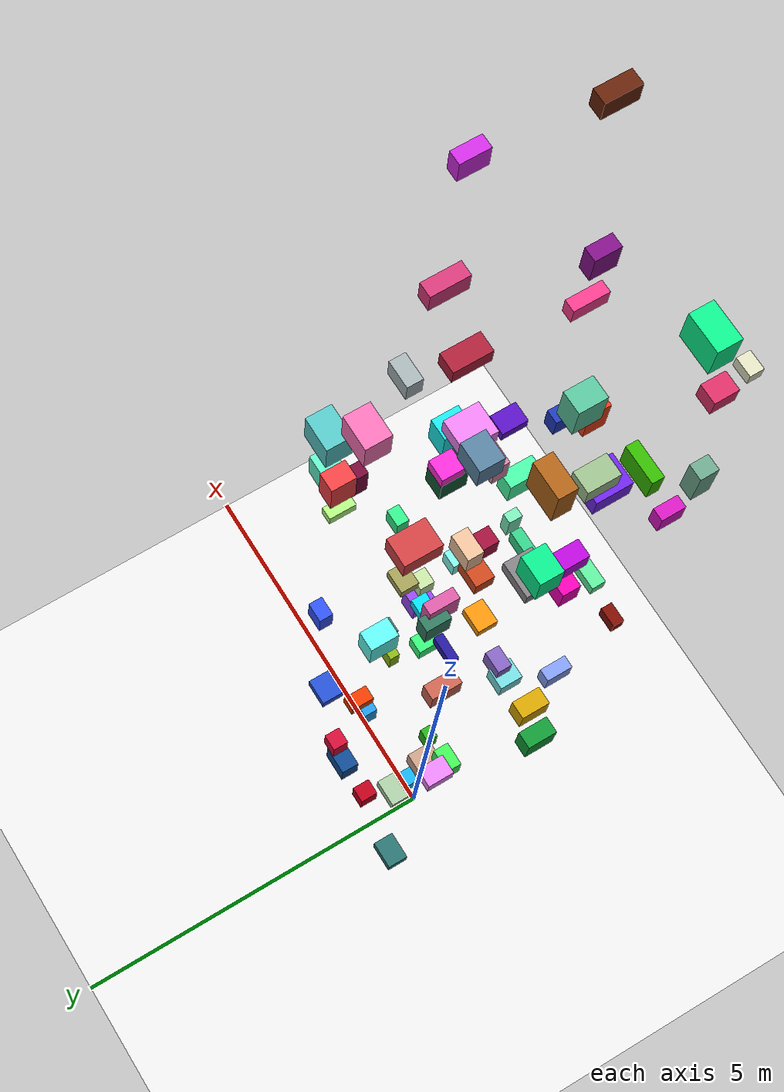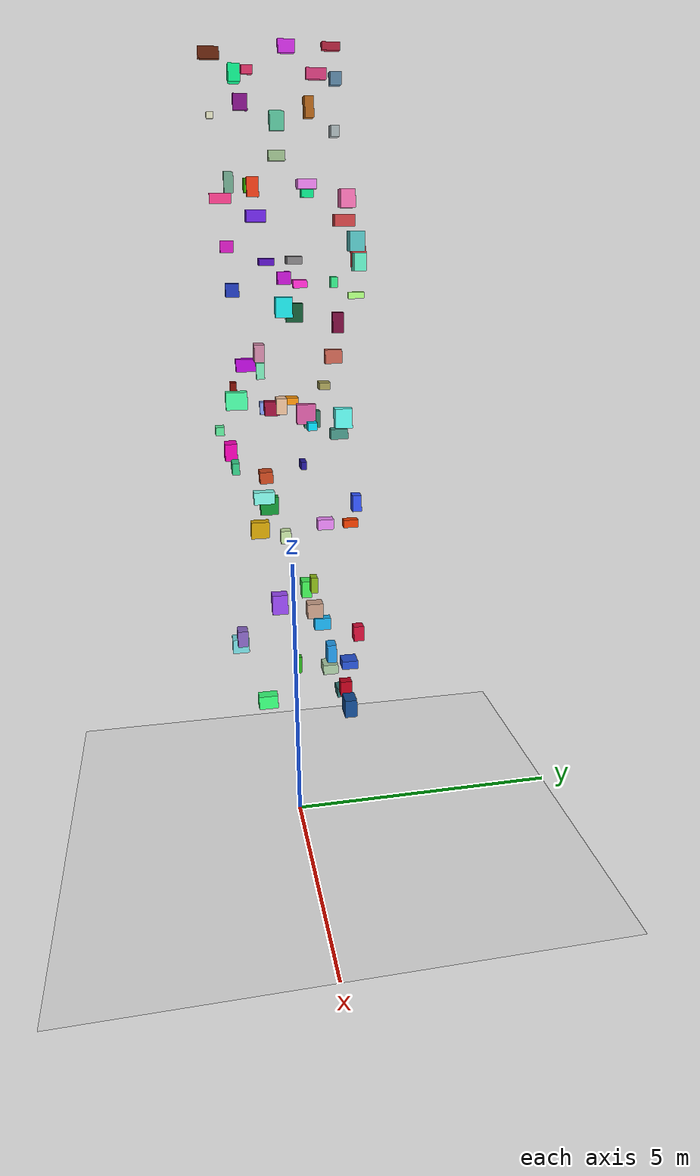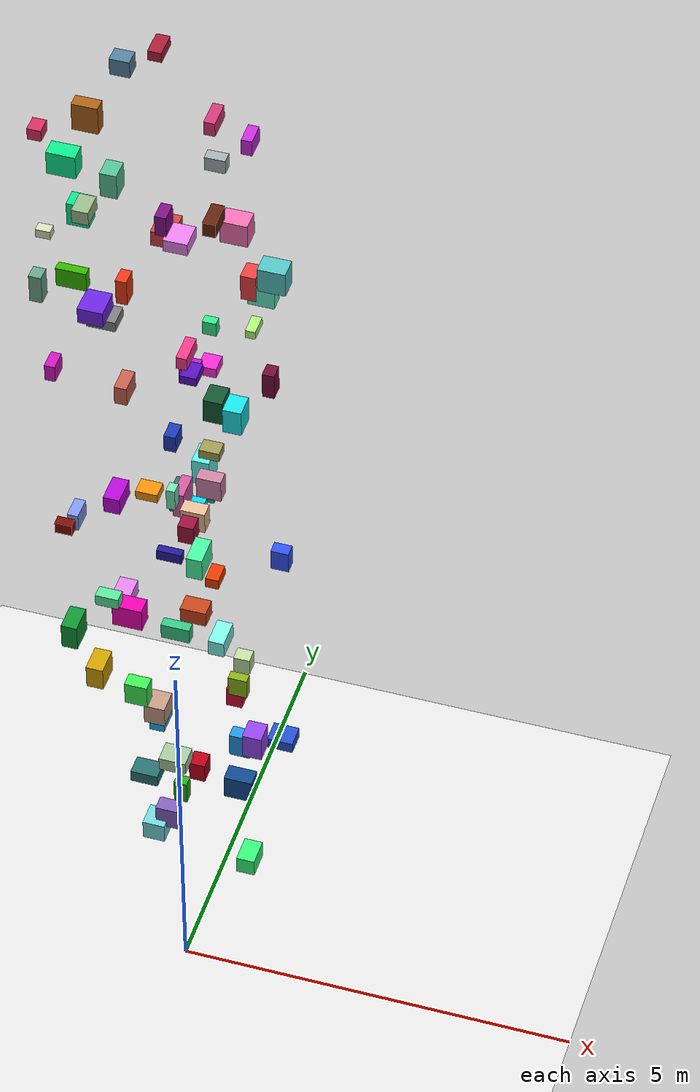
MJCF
<mujoco>
  <option timestep="0.002" gravity="0 0 -9.81" iterations="50"/>
  <compiler angle="degree"/>

  <worldbody>

    <light diffuse="0.6 0.6 0.6" pos="0 0 6" dir="0 0 -1"/>
    <light diffuse="0.4 0.4 0.4" pos="3 3 6" dir="-1 -1 -1"/>

    <geom type="plane" size="5 5 0.1" rgba="0.9 0.9 0.9 1"
          friction="1.0 0.5 0.5"/>

    <body pos="1.063 0.027 13.715">
      <joint type="free"/>
      <geom type="box"
            size="0.061 0.129 0.099"
            rgba="0.80 0.17 0.87 1"
            friction="0.8 0.1 0.1"/>
    </body>

    <body pos="0.105 0.965 7.726">
      <joint type="free"/>
      <geom type="box"
            size="0.106 0.153 0.178"
            rgba="0.37 0.97 0.93 1"
            friction="0.8 0.1 0.1"/>
    </body>

    <body pos="-0.774 0.261 10.458">
      <joint type="free"/>
      <geom type="box"
            size="0.173 0.137 0.067"
            rgba="0.50 0.49 0.50 1"
            friction="0.8 0.1 0.1"/>
    </body>

    <body pos="1.101 -0.360 4.685">
      <joint type="free"/>
      <geom type="box"
            size="0.118 0.133 0.172"
            rgba="0.58 0.27 0.93 1"
            friction="0.8 0.1 0.1"/>
    </body>

    <body pos="-0.020 0.422 7.712">
      <joint type="free"/>
      <geom type="box"
            size="0.078 0.140 0.150"
            rgba="0.19 0.46 0.36 1"
            friction="0.8 0.1 0.1"/>
    </body>

    <body pos="-0.790 -0.669 13.550">
      <joint type="free"/>
      <geom type="box"
            size="0.165 0.100 0.146"
            rgba="0.04 0.92 0.54 1"
            friction="0.8 0.1 0.1"/>
    </body>

    <body pos="0.769 -0.538 6.513">
      <joint type="free"/>
      <geom type="box"
            size="0.095 0.176 0.106"
            rgba="0.50 0.96 0.90 1"
            friction="0.8 0.1 0.1"/>
    </body>

    <body pos="-0.252 -0.462 11.685">
      <joint type="free"/>
      <geom type="box"
            size="0.064 0.101 0.164"
            rgba="0.92 0.23 0.08 1"
            friction="0.8 0.1 0.1"/>
    </body>

    <body pos="0.691 0.292 4.850">
      <joint type="free"/>
      <geom type="box"
            size="0.116 0.059 0.141"
            rgba="0.53 0.70 0.09 1"
            friction="0.8 0.1 0.1"/>
    </body>

    <body pos="0.348 -0.311 7.992">
      <joint type="free"/>
      <geom type="box"
            size="0.094 0.132 0.124"
            rgba="0.62 0.06 0.23 1"
            friction="0.8 0.1 0.1"/>
    </body>

    <body pos="-1.027 -0.280 7.772">
      <joint type="free"/>
      <geom type="box"
            size="0.065 0.137 0.113"
            rgba="0.50 0.60 0.93 1"
            friction="0.8 0.1 0.1"/>
    </body>

    <body pos="0.213 -0.976 3.758">
      <joint type="free"/>
      <geom type="box"
            size="0.140 0.092 0.148"
            rgba="0.51 0.38 0.74 1"
            friction="0.8 0.1 0.1"/>
    </body>

    <body pos="-0.761 -0.516 5.503">
      <joint type="free"/>
      <geom type="box"
            size="0.104 0.168 0.156"
            rgba="0.82 0.63 0.01 1"
            friction="0.8 0.1 0.1"/>
    </body>

    <body pos="-0.513 0.004 12.781">
      <joint type="free"/>
      <geom type="box"
            size="0.097 0.122 0.160"
            rgba="0.34 0.75 0.60 1"
            friction="0.8 0.1 0.1"/>
    </body>

    <body pos="0.061 0.311 7.818">
      <joint type="free"/>
      <geom type="box"
            size="0.065 0.167 0.176"
            rgba="0.83 0.35 0.63 1"
            friction="0.8 0.1 0.1"/>
    </body>

    <body pos="0.650 -1.051 11.473">
      <joint type="free"/>
      <geom type="box"
            size="0.061 0.172 0.081"
            rgba="0.96 0.23 0.54 1"
            friction="0.8 0.1 0.1"/>
    </body>

    <body pos="0.796 1.170 10.468">
      <joint type="free"/>
      <geom type="box"
            size="0.159 0.101 0.148"
            rgba="0.38 0.93 0.77 1"
            friction="0.8 0.1 0.1"/>
    </body>

    <body pos="-0.289 0.682 2.798">
      <joint type="free"/>
      <geom type="box"
            size="0.170 0.140 0.093"
            rgba="0.65 0.78 0.63 1"
            friction="0.8 0.1 0.1"/>
    </body>

    <body pos="0.928 -0.203 5.840">
      <joint type="free"/>
      <geom type="box"
            size="0.098 0.087 0.112"
            rgba="0.76 0.87 0.63 1"
            friction="0.8 0.1 0.1"/>
    </body>

    <body pos="0.686 1.128 9.916">
      <joint type="free"/>
      <geom type="box"
            size="0.061 0.131 0.053"
            rgba="0.68 1.00 0.49 1"
            friction="0.8 0.1 0.1"/>
    </body>

    <body pos="1.039 -1.153 13.582">
      <joint type="free"/>
      <geom type="box"
            size="0.072 0.159 0.089"
            rgba="0.39 0.13 0.04 1"
            friction="0.8 0.1 0.1"/>
    </body>

    <body pos="0.605 0.591 3.482">
      <joint type="free"/>
      <geom type="box"
            size="0.131 0.083 0.167"
            rgba="0.13 0.59 0.89 1"
            friction="0.8 0.1 0.1"/>
    </body>

    <body pos="0.092 0.410 11.725">
      <joint type="free"/>
      <geom type="box"
            size="0.142 0.157 0.079"
            rgba="0.91 0.50 0.92 1"
            friction="0.8 0.1 0.1"/>
    </body>

    <body pos="0.477 0.562 13.412">
      <joint type="free"/>
      <geom type="box"
            size="0.064 0.163 0.088"
            rgba="0.82 0.22 0.47 1"
            friction="0.8 0.1 0.1"/>
    </body>

    <body pos="-0.866 0.733 5.511">
      <joint type="free"/>
      <geom type="box"
            size="0.112 0.153 0.098"
            rgba="0.89 0.51 0.94 1"
            friction="0.8 0.1 0.1"/>
    </body>

    <body pos="0.651 1.185 10.551">
      <joint type="free"/>
      <geom type="box"
            size="0.091 0.119 0.172"
            rgba="0.92 0.25 0.26 1"
            friction="0.8 0.1 0.1"/>
    </body>

    <body pos="-0.594 0.301 4.333">
      <joint type="free"/>
      <geom type="box"
            size="0.142 0.092 0.159"
            rgba="0.25 0.93 0.33 1"
            friction="0.8 0.1 0.1"/>
    </body>

    <body pos="-1.116 -0.812 11.794">
      <joint type="free"/>
      <geom type="box"
            size="0.072 0.083 0.179"
            rgba="0.42 0.64 0.54 1"
            friction="0.8 0.1 0.1"/>
    </body>

    <body pos="-0.075 0.954 2.438">
      <joint type="free"/>
      <geom type="box"
            size="0.100 0.109 0.139"
            rgba="0.73 0.00 0.10 1"
            friction="0.8 0.1 0.1"/>
    </body>

    <body pos="-0.627 -0.398 11.213">
      <joint type="free"/>
      <geom type="box"
            size="0.147 0.171 0.102"
            rgba="0.42 0.14 0.89 1"
            friction="0.8 0.1 0.1"/>
    </body>

    <body pos="0.956 1.094 10.805">
      <joint type="free"/>
      <geom type="box"
            size="0.165 0.124 0.159"
            rgba="0.33 0.76 0.76 1"
            friction="0.8 0.1 0.1"/>
    </body>

    <body pos="0.284 0.814 10.114">
      <joint type="free"/>
      <geom type="box"
            size="0.082 0.057 0.092"
            rgba="0.20 0.91 0.53 1"
            friction="0.8 0.1 0.1"/>
    </body>

    <body pos="0.551 1.020 11.488">
      <joint type="free"/>
      <geom type="box"
            size="0.163 0.123 0.149"
            rgba="0.96 0.44 0.70 1"
            friction="0.8 0.1 0.1"/>
    </body>

    <body pos="1.087 -0.621 2.865">
      <joint type="free"/>
      <geom type="box"
            size="0.112 0.166 0.118"
            rgba="0.21 0.99 0.47 1"
            friction="0.8 0.1 0.1"/>
    </body>

    <body pos="-0.150 -1.024 7.164">
      <joint type="free"/>
      <geom type="box"
            size="0.177 0.106 0.151"
            rgba="0.93 0.00 0.69 1"
            friction="0.8 0.1 0.1"/>
    </body>

    <body pos="-0.858 0.021 12.240">
      <joint type="free"/>
      <geom type="box"
            size="0.097 0.144 0.087"
            rgba="0.60 0.73 0.54 1"
            friction="0.8 0.1 0.1"/>
    </body>

    <body pos="-0.421 0.575 3.656">
      <joint type="free"/>
      <geom type="box"
            size="0.093 0.152 0.115"
            rgba="0.09 0.68 0.92 1"
            friction="0.8 0.1 0.1"/>
    </body>

    <body pos="-0.788 1.005 2.053">
      <joint type="free"/>
      <geom type="box"
            size="0.174 0.129 0.084"
            rgba="0.16 0.44 0.43 1"
            friction="0.8 0.1 0.1"/>
    </body>

    <body pos="0.015 0.041 3.041">
      <joint type="free"/>
      <geom type="box"
            size="0.082 0.069 0.157"
            rgba="0.15 0.67 0.09 1"
            friction="0.8 0.1 0.1"/>
    </body>

    <body pos="0.367 -0.157 8.035">
      <joint type="free"/>
      <geom type="box"
            size="0.147 0.090 0.140"
            rgba="0.91 0.74 0.60 1"
            friction="0.8 0.1 0.1"/>
    </body>

    <body pos="0.457 0.942 2.302">
      <joint type="free"/>
      <geom type="box"
            size="0.179 0.111 0.166"
            rgba="0.06 0.28 0.56 1"
            friction="0.8 0.1 0.1"/>
    </body>

    <body pos="0.165 1.055 5.789">
      <joint type="free"/>
      <geom type="box"
            size="0.081 0.132 0.071"
            rgba="0.91 0.23 0.00 1"
            friction="0.8 0.1 0.1"/>
    </body>

    <body pos="0.304 -0.655 12.974">
      <joint type="free"/>
      <geom type="box"
            size="0.064 0.115 0.128"
            rgba="0.50 0.06 0.52 1"
            friction="0.8 0.1 0.1"/>
    </body>

    <body pos="-0.888 -1.095 12.879">
      <joint type="free"/>
      <geom type="box"
            size="0.084 0.059 0.052"
            rgba="0.86 0.86 0.74 1"
            friction="0.8 0.1 0.1"/>
    </body>

    <body pos="0.701 -0.532 8.994">
      <joint type="free"/>
      <geom type="box"
            size="0.146 0.082 0.145"
            rgba="0.80 0.52 0.64 1"
            friction="0.8 0.1 0.1"/>
    </body>

    <body pos="-1.138 -0.296 5.864">
      <joint type="free"/>
      <geom type="box"
            size="0.097 0.170 0.172"
            rgba="0.06 0.58 0.20 1"
            friction="0.8 0.1 0.1"/>
    </body>

    <body pos="0.365 1.138 3.720">
      <joint type="free"/>
      <geom type="box"
            size="0.100 0.094 0.142"
            rgba="0.81 0.05 0.21 1"
            friction="0.8 0.1 0.1"/>
    </body>

    <body pos="-0.307 1.106 11.144">
      <joint type="free"/>
      <geom type="box"
            size="0.132 0.176 0.101"
            rgba="0.80 0.25 0.26 1"
            friction="0.8 0.1 0.1"/>
    </body>

    <body pos="0.998 0.764 9.493">
      <joint type="free"/>
      <geom type="box"
            size="0.071 0.091 0.170"
            rgba="0.46 0.04 0.23 1"
            friction="0.8 0.1 0.1"/>
    </body>

    <body pos="0.215 0.867 7.469">
      <joint type="free"/>
      <geom type="box"
            size="0.082 0.153 0.090"
            rgba="0.27 0.58 0.52 1"
            friction="0.8 0.1 0.1"/>
    </body>

    <body pos="0.872 -0.113 9.749">
      <joint type="free"/>
      <geom type="box"
            size="0.110 0.138 0.167"
            rgba="0.10 0.89 0.90 1"
            friction="0.8 0.1 0.1"/>
    </body>

    <body pos="-0.333 -1.192 7.508">
      <joint type="free"/>
      <geom type="box"
            size="0.138 0.076 0.074"
            rgba="0.36 0.90 0.60 1"
            friction="0.8 0.1 0.1"/>
    </body>

    <body pos="0.476 0.210 10.104">
      <joint type="free"/>
      <geom type="box"
            size="0.107 0.115 0.064"
            rgba="1.00 0.17 0.82 1"
            friction="0.8 0.1 0.1"/>
    </body>

    <body pos="0.323 0.604 8.357">
      <joint type="free"/>
      <geom type="box"
            size="0.122 0.095 0.060"
            rgba="0.63 0.61 0.33 1"
            friction="0.8 0.1 0.1"/>
    </body>

    <body pos="1.008 1.026 6.398">
      <joint type="free"/>
      <geom type="box"
            size="0.110 0.078 0.144"
            rgba="0.19 0.32 0.96 1"
            friction="0.8 0.1 0.1"/>
    </body>

    <body pos="-0.832 0.948 8.718">
      <joint type="free"/>
      <geom type="box"
            size="0.076 0.155 0.126"
            rgba="0.78 0.38 0.31 1"
            friction="0.8 0.1 0.1"/>
    </body>

    <body pos="-0.936 -0.893 8.204">
      <joint type="free"/>
      <geom type="box"
            size="0.102 0.058 0.075"
            rgba="0.49 0.05 0.01 1"
            friction="0.8 0.1 0.1"/>
    </body>

    <body pos="0.396 -0.982 6.984">
      <joint type="free"/>
      <geom type="box"
            size="0.171 0.062 0.101"
            rgba="0.20 0.79 0.52 1"
            friction="0.8 0.1 0.1"/>
    </body>

    <body pos="-0.998 0.621 13.063">
      <joint type="free"/>
      <geom type="box"
            size="0.153 0.079 0.179"
            rgba="0.68 0.38 0.09 1"
            friction="0.8 0.1 0.1"/>
    </body>

    <body pos="0.070 -1.010 3.566">
      <joint type="free"/>
      <geom type="box"
            size="0.135 0.147 0.130"
            rgba="0.45 0.84 0.86 1"
            friction="0.8 0.1 0.1"/>
    </body>

    <body pos="-1.112 0.570 11.697">
      <joint type="free"/>
      <geom type="box"
            size="0.129 0.106 0.151"
            rgba="0.03 0.90 0.54 1"
            friction="0.8 0.1 0.1"/>
    </body>

    <body pos="0.205 0.395 7.621">
      <joint type="free"/>
      <geom type="box"
            size="0.089 0.082 0.071"
            rgba="0.01 0.86 0.97 1"
            friction="0.8 0.1 0.1"/>
    </body>

    <body pos="0.453 -0.468 6.811">
      <joint type="free"/>
      <geom type="box"
            size="0.156 0.112 0.101"
            rgba="0.78 0.27 0.11 1"
            friction="0.8 0.1 0.1"/>
    </body>

    <body pos="-0.249 0.919 13.945">
      <joint type="free"/>
      <geom type="box"
            size="0.079 0.151 0.064"
            rgba="0.66 0.12 0.22 1"
            friction="0.8 0.1 0.1"/>
    </body>

    <body pos="0.676 -0.932 8.196">
      <joint type="free"/>
      <geom type="box"
            size="0.094 0.179 0.149"
            rgba="0.28 0.98 0.64 1"
            friction="0.8 0.1 0.1"/>
    </body>

    <body pos="-0.824 -0.516 11.731">
      <joint type="free"/>
      <geom type="box"
            size="0.175 0.055 0.124"
            rgba="0.20 0.71 0.00 1"
            friction="0.8 0.1 0.1"/>
    </body>

    <body pos="0.578 0.090 9.636">
      <joint type="free"/>
      <geom type="box"
            size="0.113 0.138 0.158"
            rgba="0.07 0.34 0.20 1"
            friction="0.8 0.1 0.1"/>
    </body>

    <body pos="-0.100 0.251 6.870">
      <joint type="free"/>
      <geom type="box"
            size="0.152 0.051 0.071"
            rgba="0.14 0.09 0.60 1"
            friction="0.8 0.1 0.1"/>
    </body>

    <body pos="0.445 -0.336 10.467">
      <joint type="free"/>
      <geom type="box"
            size="0.097 0.126 0.055"
            rgba="0.34 0.06 0.75 1"
            friction="0.8 0.1 0.1"/>
    </body>

    <body pos="0.393 0.855 12.549">
      <joint type="free"/>
      <geom type="box"
            size="0.121 0.069 0.089"
            rgba="0.64 0.69 0.70 1"
            friction="0.8 0.1 0.1"/>
    </body>

    <body pos="-0.958 -0.901 10.693">
      <joint type="free"/>
      <geom type="box"
            size="0.061 0.116 0.107"
            rgba="0.82 0.09 0.74 1"
            friction="0.8 0.1 0.1"/>
    </body>

    <body pos="-0.397 0.433 3.954">
      <joint type="free"/>
      <geom type="box"
            size="0.131 0.148 0.140"
            rgba="0.77 0.61 0.52 1"
            friction="0.8 0.1 0.1"/>
    </body>

    <body pos="0.409 -0.911 10.007">
      <joint type="free"/>
      <geom type="box"
            size="0.069 0.111 0.110"
            rgba="0.12 0.22 0.72 1"
            friction="0.8 0.1 0.1"/>
    </body>

    <body pos="0.332 -0.039 10.196">
      <joint type="free"/>
      <geom type="box"
            size="0.101 0.112 0.105"
            rgba="0.76 0.07 0.81 1"
            friction="0.8 0.1 0.1"/>
    </body>

    <body pos="-1.174 -0.421 13.671">
      <joint type="free"/>
      <geom type="box"
            size="0.079 0.097 0.072"
            rgba="0.84 0.18 0.39 1"
            friction="0.8 0.1 0.1"/>
    </body>

    <body pos="-0.373 -0.690 8.658">
      <joint type="free"/>
      <geom type="box"
            size="0.097 0.172 0.110"
            rgba="0.72 0.03 0.84 1"
            friction="0.8 0.1 0.1"/>
    </body>

    <body pos="0.222 -0.481 8.626">
      <joint type="free"/>
      <geom type="box"
            size="0.052 0.070 0.142"
            rgba="0.47 0.90 0.71 1"
            friction="0.8 0.1 0.1"/>
    </body>

    <body pos="1.053 0.845 3.443">
      <joint type="free"/>
      <geom type="box"
            size="0.160 0.140 0.074"
            rgba="0.14 0.31 0.81 1"
            friction="0.8 0.1 0.1"/>
    </body>

    <body pos="-0.268 0.098 8.015">
      <joint type="free"/>
      <geom type="box"
            size="0.132 0.107 0.059"
            rgba="0.96 0.57 0.04 1"
            friction="0.8 0.1 0.1"/>
    </body>

    <body pos="-0.729 1.060 13.505">
      <joint type="free"/>
      <geom type="box"
            size="0.117 0.097 0.107"
            rgba="0.34 0.50 0.62 1"
            friction="0.8 0.1 0.1"/>
    </body>

  </worldbody>
</mujoco>
